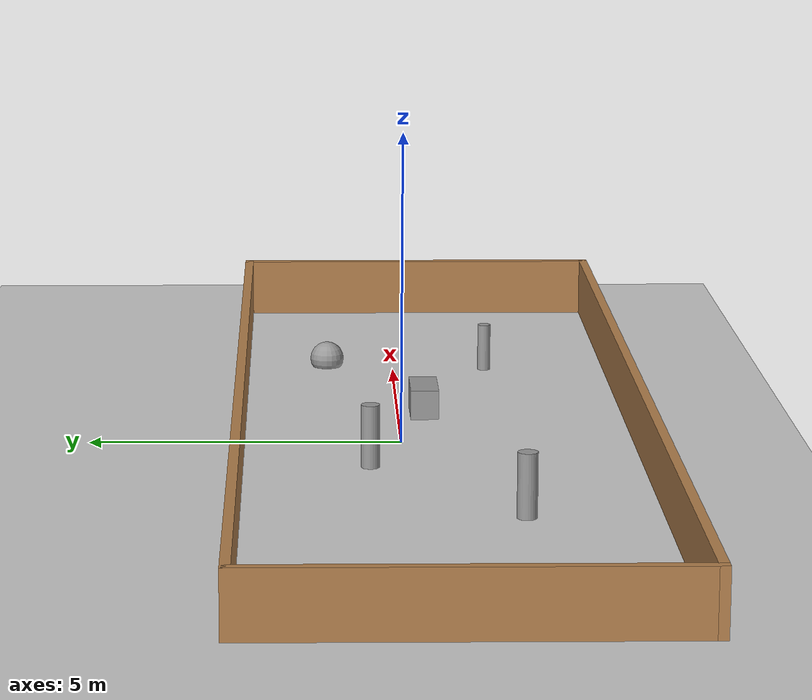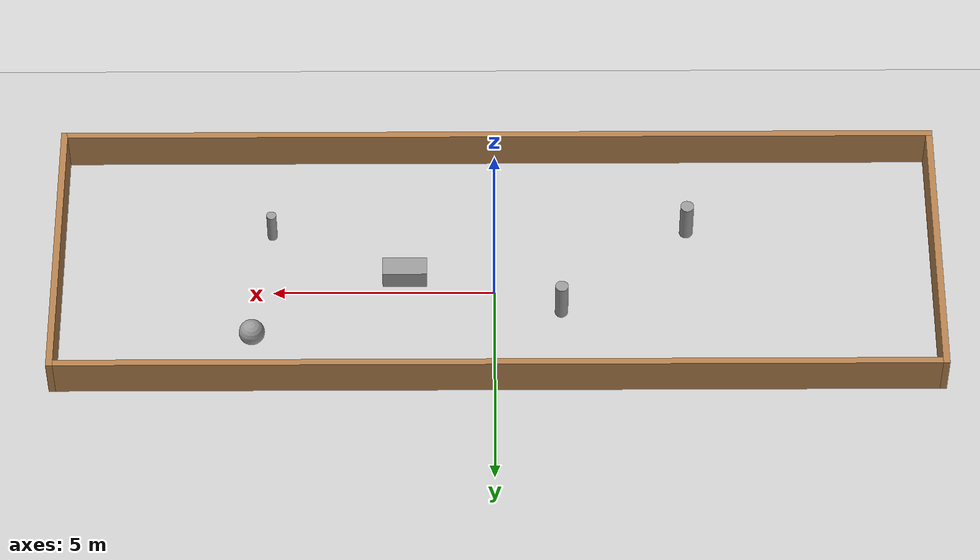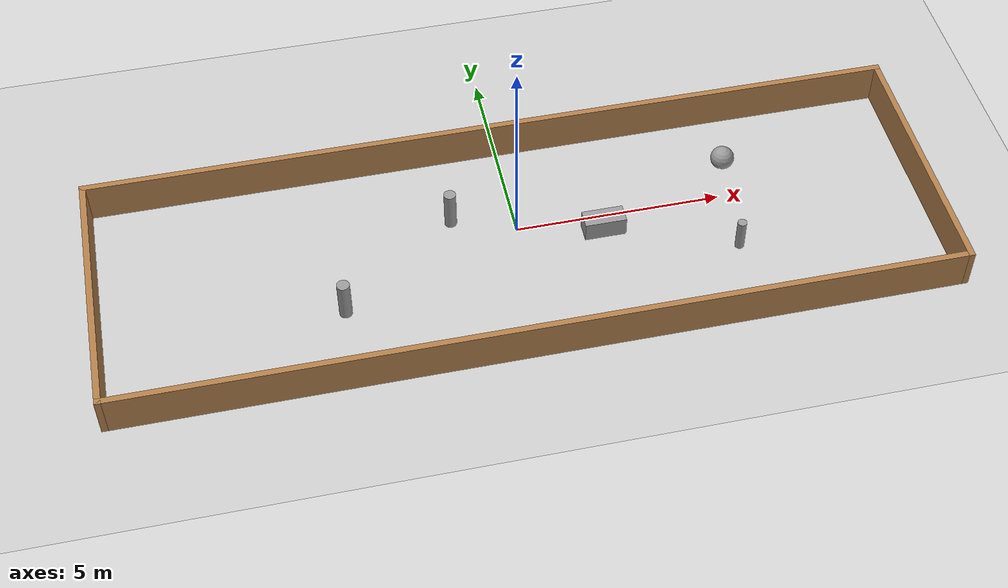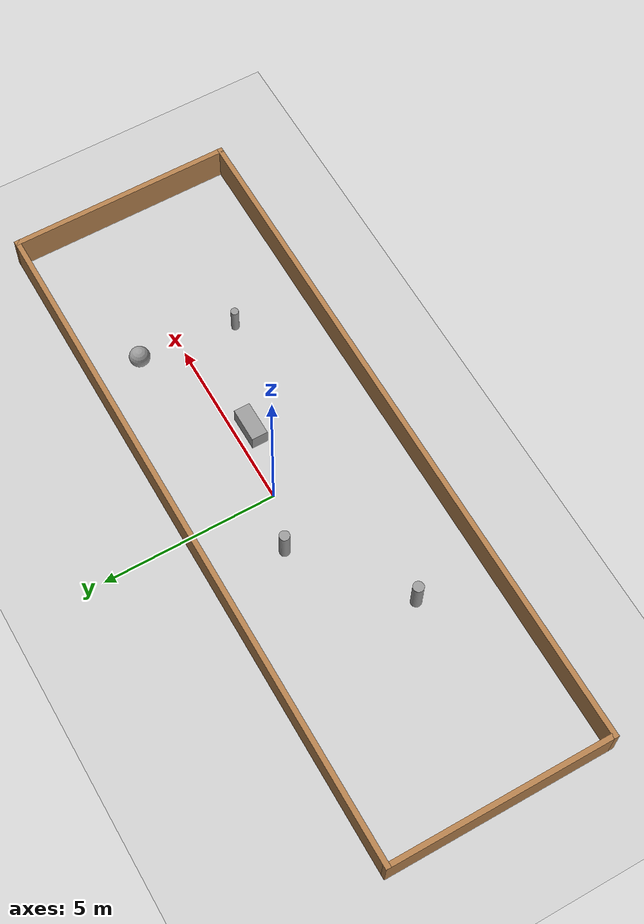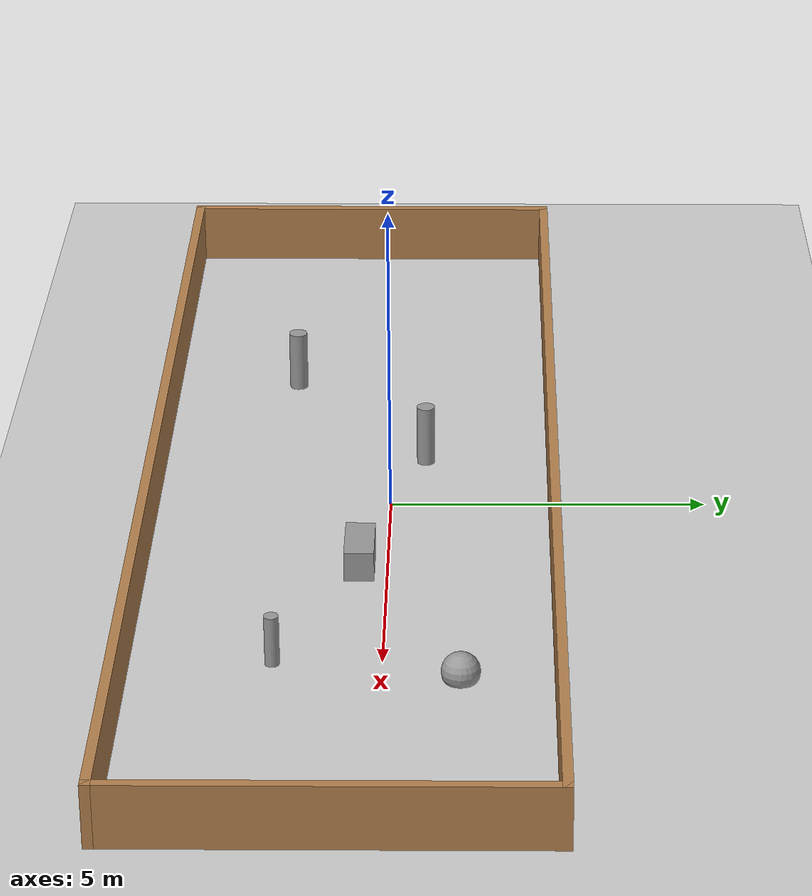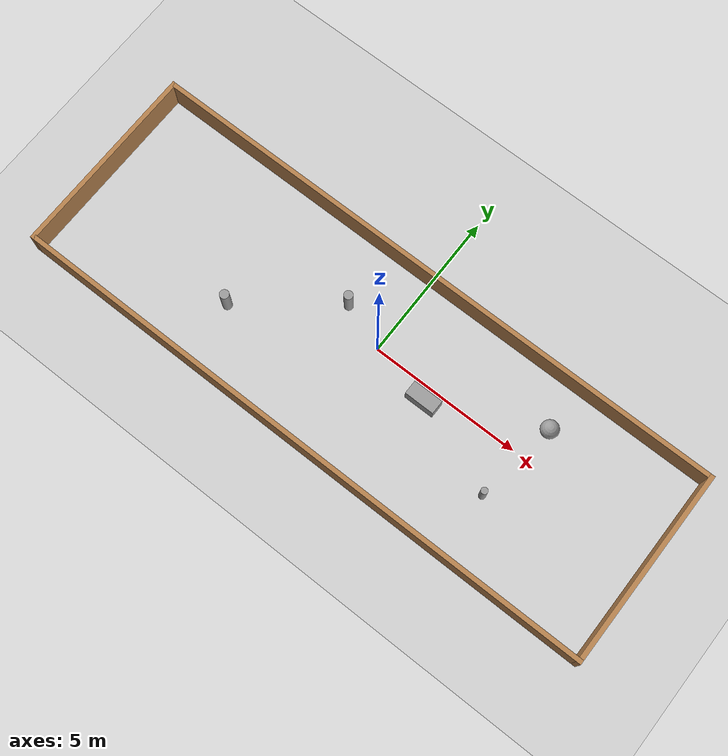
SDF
<sdf version="1.6">
 <world name="default">
  <light name="sun" type="directional">
   <pose>0 0 10 0 -0 0</pose>
   <diffuse>0.8 0.8 0.8 1</diffuse>
   <specular>0.2 0.2 0.2 1</specular>
   <attenuation>
    <range>1000</range>
    <constant>0.9</constant>
    <linear>0.01</linear>
    <quadratic>0.001</quadratic>
   </attenuation>
   <direction>-0.5 0.1 -0.9</direction>
  </light>
  <model name="ground_plane">
   <static>1</static>
   <link name="link">
    <collision name="collision">
     <geometry><plane><normal>0 0 1</normal><size>100 100</size></plane></geometry>
     <surface><friction><ode><mu>100</mu><mu2>50</mu2></ode></friction></surface>
    </collision>
    <visual name="visual">
     <cast_shadows>0</cast_shadows>
     <geometry><plane><normal>0 0 1</normal><size>100 100</size></plane></geometry>
     <material>
      <script><uri>file://media/materials/scripts/gazebo.material</uri><name>Gazebo/Grey</name></script>
     </material>
    </visual>
   </link>
  </model>
  <gravity>0 0 -9.8</gravity>
  <magnetic_field>6e-06 2.3e-05 -4.2e-05</magnetic_field>
  <atmosphere type="adiabatic"/>
  <physics name="default_physics" default="0" type="ode">
   <max_step_size>0.001</max_step_size>
   <real_time_factor>1</real_time_factor>
   <real_time_update_rate>1000</real_time_update_rate>
  </physics>
  <scene><ambient>0.4 0.4 0.4 1</ambient><background>0.7 0.7 0.7 1</background><shadows>1</shadows></scene>
  <audio><device>default</device></audio>
  <spherical_coordinates>
   <surface_model>EARTH_WGS84</surface_model>
   <latitude_deg>0</latitude_deg>
   <longitude_deg>0</longitude_deg>
   <elevation>0</elevation>
   <heading_deg>0</heading_deg>
  </spherical_coordinates>
  <model name="1_1">
   <pose>-0.068375 -0.598147 0 0 -0 0</pose>
   <link name="Wall_6">
    <collision name="Wall_6_Collision">
     <geometry><box><size>20 0.15 1</size></box></geometry>
     <pose>0 0 0.5 0 -0 0</pose>
    </collision>
    <visual name="Wall_6_Visual">
     <pose>0 0 0.5 0 -0 0</pose>
     <geometry><box><size>20 0.15 1</size></box></geometry>
     <material>
      <script><uri>file://media/materials/scripts/gazebo.material</uri><name>Gazebo/Wood</name></script>
      <ambient>1 1 1 1</ambient>
     </material>
     <meta><layer>0</layer></meta>
    </visual>
    <pose>0 3.188 0 0 -0 0</pose>
   </link>
   <link name="Wall_7">
    <collision name="Wall_7_Collision">
     <geometry><box><size>6.52611 0.15 1</size></box></geometry>
     <pose>0 0 0.5 0 -0 0</pose>
    </collision>
    <visual name="Wall_7_Visual">
     <pose>0 0 0.5 0 -0 0</pose>
     <geometry><box><size>6.52611 0.15 1</size></box></geometry>
     <material>
      <script><uri>file://media/materials/scripts/gazebo.material</uri><name>Gazebo/Wood</name></script>
      <ambient>1 1 1 1</ambient>
     </material>
     <meta><layer>0</layer></meta>
    </visual>
    <pose>9.925 0 0 0 -0 -1.5708</pose>
   </link>
   <link name="Wall_8">
    <collision name="Wall_8_Collision">
     <geometry><box><size>20 0.15 1</size></box></geometry>
     <pose>0 0 0.5 0 -0 0</pose>
    </collision>
    <visual name="Wall_8_Visual">
     <pose>0 0 0.5 0 -0 0</pose>
     <geometry><box><size>20 0.15 1</size></box></geometry>
     <material>
      <script><uri>file://media/materials/scripts/gazebo.material</uri><name>Gazebo/Wood</name></script>
      <ambient>1 1 1 1</ambient>
     </material>
     <meta><layer>0</layer></meta>
    </visual>
    <pose>0 -3.188 0 0 -0 3.14159</pose>
   </link>
   <link name="Wall_9">
    <collision name="Wall_9_Collision">
     <geometry><box><size>6.52611 0.15 1</size></box></geometry>
     <pose>0 0 0.5 0 -0 0</pose>
    </collision>
    <visual name="Wall_9_Visual">
     <pose>0 0 0.5 0 -0 0</pose>
     <geometry><box><size>6.52611 0.15 1</size></box></geometry>
     <material>
      <script><uri>file://media/materials/scripts/gazebo.material</uri><name>Gazebo/Wood</name></script>
      <ambient>1 1 1 1</ambient>
     </material>
     <meta><layer>0</layer></meta>
    </visual>
    <pose>-9.925 0 0 0 -0 1.5708</pose>
   </link>
   <static>1</static>
  </model>
  <model name="unit_cylinder">
   <pose>-1.51168 0.537344 0.5 0 -0 0</pose>
   <link name="link">
    <inertial>
     <mass>1</mass>
     <inertia><ixx>0.145833</ixx><ixy>0</ixy><ixz>0</ixz><iyy>0.145833</iyy><iyz>0</iyz><izz>0.125</izz></inertia>
    </inertial>
    <collision name="collision">
     <geometry><cylinder><radius>0.145318</radius><length>1</length></cylinder></geometry>
    </collision>
    <visual name="visual">
     <geometry><cylinder><radius>0.145318</radius><length>1</length></cylinder></geometry>
     <material>
      <script><name>Gazebo/Grey</name><uri>file://media/materials/scripts/gazebo.material</uri></script>
     </material>
    </visual>
   </link>
  </model>
  <model name="unit_cylinder_0">
   <pose>-4.38313 -1.68808 0.5 0 -0 0</pose>
   <link name="link">
    <inertial>
     <mass>1</mass>
     <inertia><ixx>0.145833</ixx><ixy>0</ixy><ixz>0</ixz><iyy>0.145833</iyy><iyz>0</iyz><izz>0.125</izz></inertia>
    </inertial>
    <collision name="collision">
     <geometry><cylinder><radius>0.151899</radius><length>1</length></cylinder></geometry>
    </collision>
    <visual name="visual">
     <geometry><cylinder><radius>0.151899</radius><length>1</length></cylinder></geometry>
     <material>
      <script><name>Gazebo/Grey</name><uri>file://media/materials/scripts/gazebo.material</uri></script>
     </material>
    </visual>
   </link>
  </model>
  <model name="unit_cylinder_1">
   <pose>5.06024 -1.61264 0.406594 0 -0 0</pose>
   <link name="link">
    <inertial>
     <mass>1</mass>
     <inertia><ixx>0.145833</ixx><ixy>0</ixy><ixz>0</ixz><iyy>0.145833</iyy><iyz>0</iyz><izz>0.125</izz></inertia>
    </inertial>
    <collision name="collision">
     <geometry><cylinder><radius>0.110025</radius><length>0.804503</length></cylinder></geometry>
    </collision>
    <visual name="visual">
     <geometry><cylinder><radius>0.110025</radius><length>0.804503</length></cylinder></geometry>
     <material>
      <script><name>Gazebo/Grey</name><uri>file://media/materials/scripts/gazebo.material</uri></script>
     </material>
    </visual>
   </link>
  </model>
  <model name="unit_box">
   <pose>2.02799 -0.429732 0.226937 0 -0 0</pose>
   <link name="link">
    <inertial>
     <mass>1</mass>
     <inertia>
      <ixx>0.166667</ixx>
      <ixy>0</ixy>
      <ixz>0</ixz>
      <iyy>0.166667</iyy>
      <iyz>0</iyz>
      <izz>0.166667</izz>
     </inertia>
    </inertial>
    <collision name="collision"><geometry><box><size>1 0.463357 0.490164</size></box></geometry></collision>
    <visual name="visual">
     <geometry><box><size>1 0.463357 0.490164</size></box></geometry>
     <material>
      <script><name>Gazebo/Grey</name><uri>file://media/materials/scripts/gazebo.material</uri></script>
     </material>
    </visual>
   </link>
  </model>
  <model name="unit_sphere">
   <pose>5.45193 1.14849 0.120736 0 -0 0</pose>
   <link name="link">
    <inertial>
     <mass>1</mass>
     <inertia><ixx>0.1</ixx><ixy>0</ixy><ixz>0</ixz><iyy>0.1</iyy><iyz>0</iyz><izz>0.1</izz></inertia>
    </inertial>
    <collision name="collision"><geometry><sphere><radius>0.291537</radius></sphere></geometry></collision>
    <visual name="visual">
     <geometry><sphere><radius>0.291537</radius></sphere></geometry>
     <material>
      <script><name>Gazebo/Grey</name><uri>file://media/materials/scripts/gazebo.material</uri></script>
     </material>
    </visual>
   </link>
  </model>
 </world>
</sdf>
